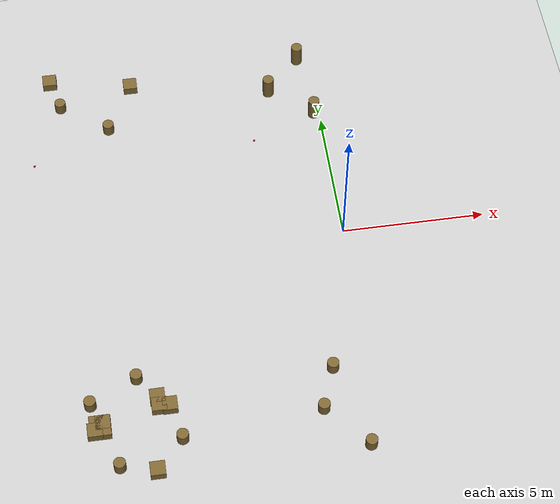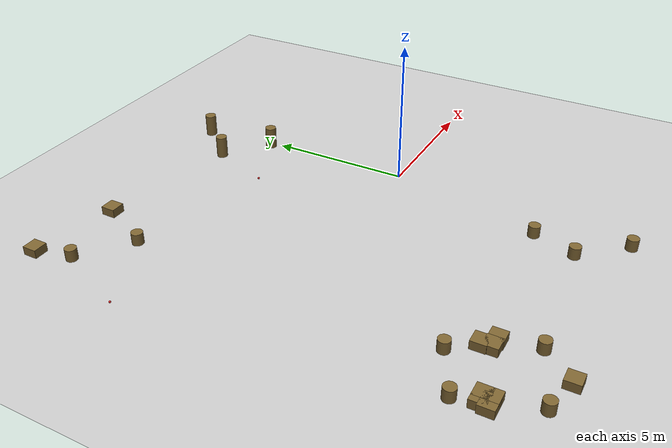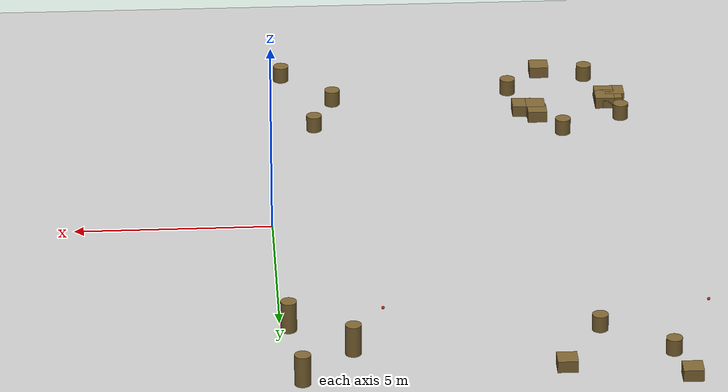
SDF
<sdf version="1.6">
 <world name="default">
  <model name="ground_plane">
   <static>1</static>
   <link name="link">
    <collision name="collision">
     <geometry><plane><normal>0 0 1</normal><size>100 100</size></plane></geometry>
     <surface><friction><ode><mu>100</mu><mu2>50</mu2></ode></friction></surface>
    </collision>
    <visual name="visual">
     <cast_shadows>0</cast_shadows>
     <geometry><plane><normal>0 0 1</normal><size>100 100</size></plane></geometry>
     <material>
      <script><uri>file://media/materials/scripts/gazebo.material</uri><name>Gazebo/Grey</name></script>
     </material>
    </visual>
   </link>
  </model>
  <model name="target_1">
   <link name="link">
    <pose>0 0 0.0375 0 -0 0</pose>
    <inertial>
     <mass>0.1467</mass>
     <inertia>
      <ixx>8.25187e-05</ixx>
      <ixy>0</ixy>
      <ixz>0</ixz>
      <iyy>8.25187e-05</iyy>
      <iyz>0</iyz>
      <izz>8.25187e-05</izz>
     </inertia>
    </inertial>
    <velocity_decay><linear>0</linear><angular>0.005</angular></velocity_decay>
    <visual name="visual">
     <geometry><sphere><radius>0.0375</radius></sphere></geometry>
     <material>
      <script><uri>file://media/materials/scripts/gazebo.material</uri><name>Gazebo/Red</name></script>
      <shader type="pixel"/>
     </material>
    </visual>
    <collision name="collision">
     <geometry><sphere><radius>0.0375</radius></sphere></geometry>
     <surface>
      <friction>
       <ode><mu>1</mu><mu2>1</mu2><fdir1>0 0 0</fdir1><slip1>0</slip1><slip2>0</slip2></ode>
       <torsional>
        <coefficient>1</coefficient>
        <patch_radius>0</patch_radius>
        <surface_radius>0.01</surface_radius>
        <use_patch_radius>0</use_patch_radius>
        <ode><slip>0</slip></ode>
       </torsional>
      </friction>
      <bounce><restitution_coefficient>0</restitution_coefficient><threshold>1e+06</threshold></bounce>
      <contact>
       <collide_without_contact>0</collide_without_contact>
       <collide_without_contact_bitmask>1</collide_without_contact_bitmask>
       <collide_bitmask>1</collide_bitmask>
       <ode>
        <soft_cfm>0</soft_cfm>
        <soft_erp>0.2</soft_erp>
        <kp>100000</kp>
        <kd>100</kd>
        <max_vel>100</max_vel>
        <min_depth>0.001</min_depth>
       </ode>
       <bullet>
        <split_impulse>1</split_impulse>
        <split_impulse_penetration_threshold>-0.01</split_impulse_penetration_threshold>
        <soft_cfm>0</soft_cfm>
        <soft_erp>0.2</soft_erp>
        <kp>100000</kp>
        <kd>100</kd>
       </bullet>
      </contact>
     </surface>
    </collision>
   </link>
   <static>0</static>
   <pose>-2.56757 4.41406 -0.001014 0 -0 0</pose>
  </model>
  <model name="target_2">
   <link name="link">
    <pose>0 0 0.0375 0 -0 0</pose>
    <inertial>
     <mass>0.1467</mass>
     <inertia>
      <ixx>8.25187e-05</ixx>
      <ixy>0</ixy>
      <ixz>0</ixz>
      <iyy>8.25187e-05</iyy>
      <iyz>0</iyz>
      <izz>8.25187e-05</izz>
     </inertia>
    </inertial>
    <velocity_decay><linear>0</linear><angular>0.005</angular></velocity_decay>
    <visual name="visual">
     <geometry><sphere><radius>0.0375</radius></sphere></geometry>
     <material>
      <script><uri>file://media/materials/scripts/gazebo.material</uri><name>Gazebo/Red</name></script>
      <shader type="pixel"/>
     </material>
    </visual>
    <collision name="collision">
     <geometry><sphere><radius>0.0375</radius></sphere></geometry>
     <surface>
      <friction>
       <ode><mu>1</mu><mu2>1</mu2><fdir1>0 0 0</fdir1><slip1>0</slip1><slip2>0</slip2></ode>
       <torsional>
        <coefficient>1</coefficient>
        <patch_radius>0</patch_radius>
        <surface_radius>0.01</surface_radius>
        <use_patch_radius>0</use_patch_radius>
        <ode><slip>0</slip></ode>
       </torsional>
      </friction>
      <bounce><restitution_coefficient>0</restitution_coefficient><threshold>1e+06</threshold></bounce>
      <contact>
       <collide_without_contact>0</collide_without_contact>
       <collide_without_contact_bitmask>1</collide_without_contact_bitmask>
       <collide_bitmask>1</collide_bitmask>
       <ode>
        <soft_cfm>0</soft_cfm>
        <soft_erp>0.2</soft_erp>
        <kp>100000</kp>
        <kd>100</kd>
        <max_vel>100</max_vel>
        <min_depth>0.001</min_depth>
       </ode>
       <bullet>
        <split_impulse>1</split_impulse>
        <split_impulse_penetration_threshold>-0.01</split_impulse_penetration_threshold>
        <soft_cfm>0</soft_cfm>
        <soft_erp>0.2</soft_erp>
        <kp>100000</kp>
        <kd>100</kd>
       </bullet>
      </contact>
     </surface>
    </collision>
   </link>
   <static>0</static>
   <pose>-10.6016 4.37211 -0.001014 0 -0 0</pose>
  </model>
  <model name="mini_box_clone_clone_2_clone_clone_0">
   <link name="link">
    <inertial>
     <mass>1</mass>
     <inertia>
      <ixx>0.166667</ixx>
      <ixy>0</ixy>
      <ixz>0</ixz>
      <iyy>0.166667</iyy>
      <iyz>0</iyz>
      <izz>0.166667</izz>
     </inertia>
    </inertial>
    <visual name="visual">
     <geometry><box><size>0.5 0.5 0.3</size></box></geometry>
     <material>
      <script><name>Gazebo/Grey</name><uri>file://media/materials/scripts/gazebo.material</uri></script>
      <shader type="vertex"><normal_map>__default__</normal_map></shader>
      <ambient>0.5 0.4 0.2 1</ambient>
      <diffuse>0.7 0.7 0.7 1</diffuse>
      <specular>0.01 0.01 0.01 1</specular>
      <emissive>0 0 0 1</emissive>
     </material>
    </visual>
    <collision name="collision">
     <geometry><box><size>0.5 0.5 0.3</size></box></geometry>
     <surface>
      <friction>
       <ode><mu>1</mu><mu2>1</mu2><fdir1>0 0 0</fdir1><slip1>0</slip1><slip2>0</slip2></ode>
       <torsional>
        <coefficient>1</coefficient>
        <patch_radius>0</patch_radius>
        <surface_radius>0</surface_radius>
        <use_patch_radius>1</use_patch_radius>
        <ode><slip>0</slip></ode>
       </torsional>
      </friction>
      <bounce><restitution_coefficient>0</restitution_coefficient><threshold>1e+06</threshold></bounce>
      <contact>
       <collide_without_contact>0</collide_without_contact>
       <collide_without_contact_bitmask>1</collide_without_contact_bitmask>
       <collide_bitmask>1</collide_bitmask>
       <ode>
        <soft_cfm>0</soft_cfm>
        <soft_erp>0.2</soft_erp>
        <kp>1e+13</kp>
        <kd>1</kd>
        <max_vel>0.01</max_vel>
        <min_depth>0</min_depth>
       </ode>
       <bullet>
        <split_impulse>1</split_impulse>
        <split_impulse_penetration_threshold>-0.01</split_impulse_penetration_threshold>
        <soft_cfm>0</soft_cfm>
        <soft_erp>0.2</soft_erp>
        <kp>1e+13</kp>
        <kd>1</kd>
       </bullet>
      </contact>
     </surface>
    </collision>
   </link>
   <static>1</static>
   <pose>-7.43924 -8.40475 0.15 0 -0 0</pose>
  </model>
  <model name="mini_box_clone_clone_2_clone_clone_0_clone">
   <link name="link">
    <inertial>
     <mass>1</mass>
     <inertia>
      <ixx>0.166667</ixx>
      <ixy>0</ixy>
      <ixz>0</ixz>
      <iyy>0.166667</iyy>
      <iyz>0</iyz>
      <izz>0.166667</izz>
     </inertia>
    </inertial>
    <visual name="visual">
     <geometry><box><size>0.5 0.5 0.3</size></box></geometry>
     <material>
      <script><name>Gazebo/Grey</name><uri>file://media/materials/scripts/gazebo.material</uri></script>
      <shader type="vertex"><normal_map>__default__</normal_map></shader>
      <ambient>0.5 0.4 0.2 1</ambient>
      <diffuse>0.7 0.7 0.7 1</diffuse>
      <specular>0.01 0.01 0.01 1</specular>
      <emissive>0 0 0 1</emissive>
     </material>
    </visual>
    <collision name="collision">
     <geometry><box><size>0.5 0.5 0.3</size></box></geometry>
     <surface>
      <friction>
       <ode><mu>1</mu><mu2>1</mu2><fdir1>0 0 0</fdir1><slip1>0</slip1><slip2>0</slip2></ode>
       <torsional>
        <coefficient>1</coefficient>
        <patch_radius>0</patch_radius>
        <surface_radius>0</surface_radius>
        <use_patch_radius>1</use_patch_radius>
        <ode><slip>0</slip></ode>
       </torsional>
      </friction>
      <bounce><restitution_coefficient>0</restitution_coefficient><threshold>1e+06</threshold></bounce>
      <contact>
       <collide_without_contact>0</collide_without_contact>
       <collide_without_contact_bitmask>1</collide_without_contact_bitmask>
       <collide_bitmask>1</collide_bitmask>
       <ode>
        <soft_cfm>0</soft_cfm>
        <soft_erp>0.2</soft_erp>
        <kp>1e+13</kp>
        <kd>1</kd>
        <max_vel>0.01</max_vel>
        <min_depth>0</min_depth>
       </ode>
       <bullet>
        <split_impulse>1</split_impulse>
        <split_impulse_penetration_threshold>-0.01</split_impulse_penetration_threshold>
        <soft_cfm>0</soft_cfm>
        <soft_erp>0.2</soft_erp>
        <kp>1e+13</kp>
        <kd>1</kd>
       </bullet>
      </contact>
     </surface>
    </collision>
   </link>
   <static>1</static>
   <pose>-6.80551 -6.12268 0.15 0 -0 0</pose>
  </model>
  <model name="mini_box_clone_clone_2_clone_clone_0_clone_0">
   <link name="link">
    <inertial>
     <mass>1</mass>
     <inertia>
      <ixx>0.166667</ixx>
      <ixy>0</ixy>
      <ixz>0</ixz>
      <iyy>0.166667</iyy>
      <iyz>0</iyz>
      <izz>0.166667</izz>
     </inertia>
    </inertial>
    <visual name="visual">
     <geometry><box><size>0.5 0.5 0.3</size></box></geometry>
     <material>
      <script><name>Gazebo/Grey</name><uri>file://media/materials/scripts/gazebo.material</uri></script>
      <shader type="vertex"><normal_map>__default__</normal_map></shader>
      <ambient>0.5 0.4 0.2 1</ambient>
      <diffuse>0.7 0.7 0.7 1</diffuse>
      <specular>0.01 0.01 0.01 1</specular>
      <emissive>0 0 0 1</emissive>
     </material>
    </visual>
    <collision name="collision">
     <geometry><box><size>0.5 0.5 0.3</size></box></geometry>
     <surface>
      <friction>
       <ode><mu>1</mu><mu2>1</mu2><fdir1>0 0 0</fdir1><slip1>0</slip1><slip2>0</slip2></ode>
       <torsional>
        <coefficient>1</coefficient>
        <patch_radius>0</patch_radius>
        <surface_radius>0</surface_radius>
        <use_patch_radius>1</use_patch_radius>
        <ode><slip>0</slip></ode>
       </torsional>
      </friction>
      <bounce><restitution_coefficient>0</restitution_coefficient><threshold>1e+06</threshold></bounce>
      <contact>
       <collide_without_contact>0</collide_without_contact>
       <collide_without_contact_bitmask>1</collide_without_contact_bitmask>
       <collide_bitmask>1</collide_bitmask>
       <ode>
        <soft_cfm>0</soft_cfm>
        <soft_erp>0.2</soft_erp>
        <kp>1e+13</kp>
        <kd>1</kd>
        <max_vel>0.01</max_vel>
        <min_depth>0</min_depth>
       </ode>
       <bullet>
        <split_impulse>1</split_impulse>
        <split_impulse_penetration_threshold>-0.01</split_impulse_penetration_threshold>
        <soft_cfm>0</soft_cfm>
        <soft_erp>0.2</soft_erp>
        <kp>1e+13</kp>
        <kd>1</kd>
       </bullet>
      </contact>
     </surface>
    </collision>
   </link>
   <static>1</static>
   <pose>-7.16035 -6.09735 0.15 0 -0 0</pose>
  </model>
  <model name="mini_box_clone_clone_2_clone_clone_0_clone_1">
   <link name="link">
    <inertial>
     <mass>1</mass>
     <inertia>
      <ixx>0.166667</ixx>
      <ixy>0</ixy>
      <ixz>0</ixz>
      <iyy>0.166667</iyy>
      <iyz>0</iyz>
      <izz>0.166667</izz>
     </inertia>
    </inertial>
    <visual name="visual">
     <geometry><box><size>0.5 0.5 0.3</size></box></geometry>
     <material>
      <script><name>Gazebo/Grey</name><uri>file://media/materials/scripts/gazebo.material</uri></script>
      <shader type="vertex"><normal_map>__default__</normal_map></shader>
      <ambient>0.5 0.4 0.2 1</ambient>
      <diffuse>0.7 0.7 0.7 1</diffuse>
      <specular>0.01 0.01 0.01 1</specular>
      <emissive>0 0 0 1</emissive>
     </material>
    </visual>
    <collision name="collision">
     <geometry><box><size>0.5 0.5 0.3</size></box></geometry>
     <surface>
      <friction>
       <ode><mu>1</mu><mu2>1</mu2><fdir1>0 0 0</fdir1><slip1>0</slip1><slip2>0</slip2></ode>
       <torsional>
        <coefficient>1</coefficient>
        <patch_radius>0</patch_radius>
        <surface_radius>0</surface_radius>
        <use_patch_radius>1</use_patch_radius>
        <ode><slip>0</slip></ode>
       </torsional>
      </friction>
      <bounce><restitution_coefficient>0</restitution_coefficient><threshold>1e+06</threshold></bounce>
      <contact>
       <collide_without_contact>0</collide_without_contact>
       <collide_without_contact_bitmask>1</collide_without_contact_bitmask>
       <collide_bitmask>1</collide_bitmask>
       <ode>
        <soft_cfm>0</soft_cfm>
        <soft_erp>0.2</soft_erp>
        <kp>1e+13</kp>
        <kd>1</kd>
        <max_vel>0.01</max_vel>
        <min_depth>0</min_depth>
       </ode>
       <bullet>
        <split_impulse>1</split_impulse>
        <split_impulse_penetration_threshold>-0.01</split_impulse_penetration_threshold>
        <soft_cfm>0</soft_cfm>
        <soft_erp>0.2</soft_erp>
        <kp>1e+13</kp>
        <kd>1</kd>
       </bullet>
      </contact>
     </surface>
    </collision>
   </link>
   <static>1</static>
   <pose>-7.18588 -5.76768 0.15 0 -0 0</pose>
  </model>
  <model name="mini_box_clone_clone_2_clone_clone_0_clone_2">
   <link name="link">
    <inertial>
     <mass>1</mass>
     <inertia>
      <ixx>0.166667</ixx>
      <ixy>0</ixy>
      <ixz>0</ixz>
      <iyy>0.166667</iyy>
      <iyz>0</iyz>
      <izz>0.166667</izz>
     </inertia>
    </inertial>
    <visual name="visual">
     <geometry><box><size>0.5 0.5 0.3</size></box></geometry>
     <material>
      <script><name>Gazebo/Grey</name><uri>file://media/materials/scripts/gazebo.material</uri></script>
      <shader type="vertex"><normal_map>__default__</normal_map></shader>
      <ambient>0.5 0.4 0.2 1</ambient>
      <diffuse>0.7 0.7 0.7 1</diffuse>
      <specular>0.01 0.01 0.01 1</specular>
      <emissive>0 0 0 1</emissive>
     </material>
    </visual>
    <collision name="collision">
     <geometry><box><size>0.5 0.5 0.3</size></box></geometry>
     <surface>
      <friction>
       <ode><mu>1</mu><mu2>1</mu2><fdir1>0 0 0</fdir1><slip1>0</slip1><slip2>0</slip2></ode>
       <torsional>
        <coefficient>1</coefficient>
        <patch_radius>0</patch_radius>
        <surface_radius>0</surface_radius>
        <use_patch_radius>1</use_patch_radius>
        <ode><slip>0</slip></ode>
       </torsional>
      </friction>
      <bounce><restitution_coefficient>0</restitution_coefficient><threshold>1e+06</threshold></bounce>
      <contact>
       <collide_without_contact>0</collide_without_contact>
       <collide_without_contact_bitmask>1</collide_without_contact_bitmask>
       <collide_bitmask>1</collide_bitmask>
       <ode>
        <soft_cfm>0</soft_cfm>
        <soft_erp>0.2</soft_erp>
        <kp>1e+13</kp>
        <kd>1</kd>
        <max_vel>0.01</max_vel>
        <min_depth>0</min_depth>
       </ode>
       <bullet>
        <split_impulse>1</split_impulse>
        <split_impulse_penetration_threshold>-0.01</split_impulse_penetration_threshold>
        <soft_cfm>0</soft_cfm>
        <soft_erp>0.2</soft_erp>
        <kp>1e+13</kp>
        <kd>1</kd>
       </bullet>
      </contact>
     </surface>
    </collision>
   </link>
   <static>1</static>
   <pose>-9.23906 -6.503 0.15 0 -0 0</pose>
  </model>
  <model name="mini_box_clone_clone_2_clone_clone_0_clone_3">
   <link name="link">
    <inertial>
     <mass>1</mass>
     <inertia>
      <ixx>0.166667</ixx>
      <ixy>0</ixy>
      <ixz>0</ixz>
      <iyy>0.166667</iyy>
      <iyz>0</iyz>
      <izz>0.166667</izz>
     </inertia>
    </inertial>
    <visual name="visual">
     <geometry><box><size>0.5 0.5 0.3</size></box></geometry>
     <material>
      <script><name>Gazebo/Grey</name><uri>file://media/materials/scripts/gazebo.material</uri></script>
      <shader type="vertex"><normal_map>__default__</normal_map></shader>
      <ambient>0.5 0.4 0.2 1</ambient>
      <diffuse>0.7 0.7 0.7 1</diffuse>
      <specular>0.01 0.01 0.01 1</specular>
      <emissive>0 0 0 1</emissive>
     </material>
    </visual>
    <collision name="collision">
     <geometry><box><size>0.5 0.5 0.3</size></box></geometry>
     <surface>
      <friction>
       <ode><mu>1</mu><mu2>1</mu2><fdir1>0 0 0</fdir1><slip1>0</slip1><slip2>0</slip2></ode>
       <torsional>
        <coefficient>1</coefficient>
        <patch_radius>0</patch_radius>
        <surface_radius>0</surface_radius>
        <use_patch_radius>1</use_patch_radius>
        <ode><slip>0</slip></ode>
       </torsional>
      </friction>
      <bounce><restitution_coefficient>0</restitution_coefficient><threshold>1e+06</threshold></bounce>
      <contact>
       <collide_without_contact>0</collide_without_contact>
       <collide_without_contact_bitmask>1</collide_without_contact_bitmask>
       <collide_bitmask>1</collide_bitmask>
       <ode>
        <soft_cfm>0</soft_cfm>
        <soft_erp>0.2</soft_erp>
        <kp>1e+13</kp>
        <kd>1</kd>
        <max_vel>0.01</max_vel>
        <min_depth>0</min_depth>
       </ode>
       <bullet>
        <split_impulse>1</split_impulse>
        <split_impulse_penetration_threshold>-0.01</split_impulse_penetration_threshold>
        <soft_cfm>0</soft_cfm>
        <soft_erp>0.2</soft_erp>
        <kp>1e+13</kp>
        <kd>1</kd>
       </bullet>
      </contact>
     </surface>
    </collision>
   </link>
   <static>1</static>
   <pose>-9.03619 -6.503 0.15 0 -0 0</pose>
  </model>
  <model name="mini_box_clone_clone_2_clone_clone_0_clone_4">
   <link name="link">
    <inertial>
     <mass>1</mass>
     <inertia>
      <ixx>0.166667</ixx>
      <ixy>0</ixy>
      <ixz>0</ixz>
      <iyy>0.166667</iyy>
      <iyz>0</iyz>
      <izz>0.166667</izz>
     </inertia>
    </inertial>
    <visual name="visual">
     <geometry><box><size>0.5 0.5 0.3</size></box></geometry>
     <material>
      <script><name>Gazebo/Grey</name><uri>file://media/materials/scripts/gazebo.material</uri></script>
      <shader type="vertex"><normal_map>__default__</normal_map></shader>
      <ambient>0.5 0.4 0.2 1</ambient>
      <diffuse>0.7 0.7 0.7 1</diffuse>
      <specular>0.01 0.01 0.01 1</specular>
      <emissive>0 0 0 1</emissive>
     </material>
    </visual>
    <collision name="collision">
     <geometry><box><size>0.5 0.5 0.3</size></box></geometry>
     <surface>
      <friction>
       <ode><mu>1</mu><mu2>1</mu2><fdir1>0 0 0</fdir1><slip1>0</slip1><slip2>0</slip2></ode>
       <torsional>
        <coefficient>1</coefficient>
        <patch_radius>0</patch_radius>
        <surface_radius>0</surface_radius>
        <use_patch_radius>1</use_patch_radius>
        <ode><slip>0</slip></ode>
       </torsional>
      </friction>
      <bounce><restitution_coefficient>0</restitution_coefficient><threshold>1e+06</threshold></bounce>
      <contact>
       <collide_without_contact>0</collide_without_contact>
       <collide_without_contact_bitmask>1</collide_without_contact_bitmask>
       <collide_bitmask>1</collide_bitmask>
       <ode>
        <soft_cfm>0</soft_cfm>
        <soft_erp>0.2</soft_erp>
        <kp>1e+13</kp>
        <kd>1</kd>
        <max_vel>0.01</max_vel>
        <min_depth>0</min_depth>
       </ode>
       <bullet>
        <split_impulse>1</split_impulse>
        <split_impulse_penetration_threshold>-0.01</split_impulse_penetration_threshold>
        <soft_cfm>0</soft_cfm>
        <soft_erp>0.2</soft_erp>
        <kp>1e+13</kp>
        <kd>1</kd>
       </bullet>
      </contact>
     </surface>
    </collision>
   </link>
   <static>1</static>
   <pose>-9.03619 -6.75657 0.15 0 -0 0</pose>
  </model>
  <model name="mini_box_clone_clone_2_clone_clone_0_clone_5">
   <link name="link">
    <inertial>
     <mass>1</mass>
     <inertia>
      <ixx>0.166667</ixx>
      <ixy>0</ixy>
      <ixz>0</ixz>
      <iyy>0.166667</iyy>
      <iyz>0</iyz>
      <izz>0.166667</izz>
     </inertia>
    </inertial>
    <visual name="visual">
     <geometry><box><size>0.5 0.5 0.3</size></box></geometry>
     <material>
      <script><name>Gazebo/Grey</name><uri>file://media/materials/scripts/gazebo.material</uri></script>
      <shader type="vertex"><normal_map>__default__</normal_map></shader>
      <ambient>0.5 0.4 0.2 1</ambient>
      <diffuse>0.7 0.7 0.7 1</diffuse>
      <specular>0.01 0.01 0.01 1</specular>
      <emissive>0 0 0 1</emissive>
     </material>
    </visual>
    <collision name="collision">
     <geometry><box><size>0.5 0.5 0.3</size></box></geometry>
     <surface>
      <friction>
       <ode><mu>1</mu><mu2>1</mu2><fdir1>0 0 0</fdir1><slip1>0</slip1><slip2>0</slip2></ode>
       <torsional>
        <coefficient>1</coefficient>
        <patch_radius>0</patch_radius>
        <surface_radius>0</surface_radius>
        <use_patch_radius>1</use_patch_radius>
        <ode><slip>0</slip></ode>
       </torsional>
      </friction>
      <bounce><restitution_coefficient>0</restitution_coefficient><threshold>1e+06</threshold></bounce>
      <contact>
       <collide_without_contact>0</collide_without_contact>
       <collide_without_contact_bitmask>1</collide_without_contact_bitmask>
       <collide_bitmask>1</collide_bitmask>
       <ode>
        <soft_cfm>0</soft_cfm>
        <soft_erp>0.2</soft_erp>
        <kp>1e+13</kp>
        <kd>1</kd>
        <max_vel>0.01</max_vel>
        <min_depth>0</min_depth>
       </ode>
       <bullet>
        <split_impulse>1</split_impulse>
        <split_impulse_penetration_threshold>-0.01</split_impulse_penetration_threshold>
        <soft_cfm>0</soft_cfm>
        <soft_erp>0.2</soft_erp>
        <kp>1e+13</kp>
        <kd>1</kd>
       </bullet>
      </contact>
     </surface>
    </collision>
   </link>
   <static>1</static>
   <pose>-9.31525 -6.75657 0.15 0 -0 0</pose>
  </model>
  <model name="mini_box_clone_clone_2_clone_clone_0_clone_6">
   <link name="link">
    <inertial>
     <mass>1</mass>
     <inertia>
      <ixx>0.166667</ixx>
      <ixy>0</ixy>
      <ixz>0</ixz>
      <iyy>0.166667</iyy>
      <iyz>0</iyz>
      <izz>0.166667</izz>
     </inertia>
    </inertial>
    <visual name="visual">
     <geometry><box><size>0.5 0.5 0.3</size></box></geometry>
     <material>
      <script><name>Gazebo/Grey</name><uri>file://media/materials/scripts/gazebo.material</uri></script>
      <shader type="vertex"><normal_map>__default__</normal_map></shader>
      <ambient>0.5 0.4 0.2 1</ambient>
      <diffuse>0.7 0.7 0.7 1</diffuse>
      <specular>0.01 0.01 0.01 1</specular>
      <emissive>0 0 0 1</emissive>
     </material>
    </visual>
    <collision name="collision">
     <geometry><box><size>0.5 0.5 0.3</size></box></geometry>
     <surface>
      <friction>
       <ode><mu>1</mu><mu2>1</mu2><fdir1>0 0 0</fdir1><slip1>0</slip1><slip2>0</slip2></ode>
       <torsional>
        <coefficient>1</coefficient>
        <patch_radius>0</patch_radius>
        <surface_radius>0</surface_radius>
        <use_patch_radius>1</use_patch_radius>
        <ode><slip>0</slip></ode>
       </torsional>
      </friction>
      <bounce><restitution_coefficient>0</restitution_coefficient><threshold>1e+06</threshold></bounce>
      <contact>
       <collide_without_contact>0</collide_without_contact>
       <collide_without_contact_bitmask>1</collide_without_contact_bitmask>
       <collide_bitmask>1</collide_bitmask>
       <ode>
        <soft_cfm>0</soft_cfm>
        <soft_erp>0.2</soft_erp>
        <kp>1e+13</kp>
        <kd>1</kd>
        <max_vel>0.01</max_vel>
        <min_depth>0</min_depth>
       </ode>
       <bullet>
        <split_impulse>1</split_impulse>
        <split_impulse_penetration_threshold>-0.01</split_impulse_penetration_threshold>
        <soft_cfm>0</soft_cfm>
        <soft_erp>0.2</soft_erp>
        <kp>1e+13</kp>
        <kd>1</kd>
       </bullet>
      </contact>
     </surface>
    </collision>
   </link>
   <static>1</static>
   <pose>-6.83027 7.54445 0.15 0 -0 0</pose>
  </model>
  <model name="mini_box_clone_clone_2_clone_clone_0_clone_7">
   <link name="link">
    <inertial>
     <mass>1</mass>
     <inertia>
      <ixx>0.166667</ixx>
      <ixy>0</ixy>
      <ixz>0</ixz>
      <iyy>0.166667</iyy>
      <iyz>0</iyz>
      <izz>0.166667</izz>
     </inertia>
    </inertial>
    <visual name="visual">
     <geometry><box><size>0.5 0.5 0.3</size></box></geometry>
     <material>
      <script><name>Gazebo/Grey</name><uri>file://media/materials/scripts/gazebo.material</uri></script>
      <shader type="vertex"><normal_map>__default__</normal_map></shader>
      <ambient>0.5 0.4 0.2 1</ambient>
      <diffuse>0.7 0.7 0.7 1</diffuse>
      <specular>0.01 0.01 0.01 1</specular>
      <emissive>0 0 0 1</emissive>
     </material>
    </visual>
    <collision name="collision">
     <geometry><box><size>0.5 0.5 0.3</size></box></geometry>
     <surface>
      <friction>
       <ode><mu>1</mu><mu2>1</mu2><fdir1>0 0 0</fdir1><slip1>0</slip1><slip2>0</slip2></ode>
       <torsional>
        <coefficient>1</coefficient>
        <patch_radius>0</patch_radius>
        <surface_radius>0</surface_radius>
        <use_patch_radius>1</use_patch_radius>
        <ode><slip>0</slip></ode>
       </torsional>
      </friction>
      <bounce><restitution_coefficient>0</restitution_coefficient><threshold>1e+06</threshold></bounce>
      <contact>
       <collide_without_contact>0</collide_without_contact>
       <collide_without_contact_bitmask>1</collide_without_contact_bitmask>
       <collide_bitmask>1</collide_bitmask>
       <ode>
        <soft_cfm>0</soft_cfm>
        <soft_erp>0.2</soft_erp>
        <kp>1e+13</kp>
        <kd>1</kd>
        <max_vel>0.01</max_vel>
        <min_depth>0</min_depth>
       </ode>
       <bullet>
        <split_impulse>1</split_impulse>
        <split_impulse_penetration_threshold>-0.01</split_impulse_penetration_threshold>
        <soft_cfm>0</soft_cfm>
        <soft_erp>0.2</soft_erp>
        <kp>1e+13</kp>
        <kd>1</kd>
       </bullet>
      </contact>
     </surface>
    </collision>
   </link>
   <static>1</static>
   <pose>-9.79692 8.12768 0.15 0 -0 0</pose>
  </model>
  <model name="dynamic_1_1">
   <link name="link">
    <inertial>
     <mass>1</mass>
     <inertia><ixx>0.145833</ixx><ixy>0</ixy><ixz>0</ixz><iyy>0.145833</iyy><iyz>0</iyz><izz>0.125</izz></inertia>
    </inertial>
    <visual name="visual">
     <geometry><cylinder><radius>0.2</radius><length>0.8</length></cylinder></geometry>
     <material>
      <script><name>Gazebo/Grey</name><uri>file://media/materials/scripts/gazebo.material</uri></script>
      <shader type="vertex"><normal_map>__default__</normal_map></shader>
      <ambient>0.5 0.4 0.2 1</ambient>
      <diffuse>0.7 0.7 0.7 1</diffuse>
      <specular>0.01 0.01 0.01 1</specular>
      <emissive>0 0 0 1</emissive>
     </material>
    </visual>
    <collision name="collision">
     <geometry><cylinder><radius>0.2</radius><length>0.8</length></cylinder></geometry>
     <surface>
      <friction>
       <ode><mu>1</mu><mu2>1</mu2><fdir1>0 0 0</fdir1><slip1>0</slip1><slip2>0</slip2></ode>
       <torsional>
        <coefficient>1</coefficient>
        <patch_radius>0</patch_radius>
        <surface_radius>0</surface_radius>
        <use_patch_radius>1</use_patch_radius>
        <ode><slip>0</slip></ode>
       </torsional>
      </friction>
      <bounce><restitution_coefficient>0</restitution_coefficient><threshold>1e+06</threshold></bounce>
      <contact>
       <collide_without_contact>0</collide_without_contact>
       <collide_without_contact_bitmask>1</collide_without_contact_bitmask>
       <collide_bitmask>1</collide_bitmask>
       <ode>
        <soft_cfm>0</soft_cfm>
        <soft_erp>0.2</soft_erp>
        <kp>1e+13</kp>
        <kd>1</kd>
        <max_vel>0.01</max_vel>
        <min_depth>0</min_depth>
       </ode>
       <bullet>
        <split_impulse>1</split_impulse>
        <split_impulse_penetration_threshold>-0.01</split_impulse_penetration_threshold>
        <soft_cfm>0</soft_cfm>
        <soft_erp>0.2</soft_erp>
        <kp>1e+13</kp>
        <kd>1</kd>
       </bullet>
      </contact>
     </surface>
    </collision>
   </link>
   <static>0</static>
   <pose>-0.455298 8.00454 0.399992 1e-06 2e-06 0</pose>
  </model>
  <model name="dynamic_1_3">
   <link name="link">
    <inertial>
     <mass>1</mass>
     <inertia><ixx>0.145833</ixx><ixy>0</ixy><ixz>0</ixz><iyy>0.145833</iyy><iyz>0</iyz><izz>0.125</izz></inertia>
    </inertial>
    <visual name="visual">
     <geometry><cylinder><radius>0.2</radius><length>0.8</length></cylinder></geometry>
     <material>
      <script><name>Gazebo/Grey</name><uri>file://media/materials/scripts/gazebo.material</uri></script>
      <shader type="vertex"><normal_map>__default__</normal_map></shader>
      <ambient>0.5 0.4 0.2 1</ambient>
      <diffuse>0.7 0.7 0.7 1</diffuse>
      <specular>0.01 0.01 0.01 1</specular>
      <emissive>0 0 0 1</emissive>
     </material>
    </visual>
    <collision name="collision">
     <geometry><cylinder><radius>0.2</radius><length>0.8</length></cylinder></geometry>
     <surface>
      <friction>
       <ode><mu>1</mu><mu2>1</mu2><fdir1>0 0 0</fdir1><slip1>0</slip1><slip2>0</slip2></ode>
       <torsional>
        <coefficient>1</coefficient>
        <patch_radius>0</patch_radius>
        <surface_radius>0</surface_radius>
        <use_patch_radius>1</use_patch_radius>
        <ode><slip>0</slip></ode>
       </torsional>
      </friction>
      <bounce><restitution_coefficient>0</restitution_coefficient><threshold>1e+06</threshold></bounce>
      <contact>
       <collide_without_contact>0</collide_without_contact>
       <collide_without_contact_bitmask>1</collide_without_contact_bitmask>
       <collide_bitmask>1</collide_bitmask>
       <ode>
        <soft_cfm>0</soft_cfm>
        <soft_erp>0.2</soft_erp>
        <kp>1e+13</kp>
        <kd>1</kd>
        <max_vel>0.01</max_vel>
        <min_depth>0</min_depth>
       </ode>
       <bullet>
        <split_impulse>1</split_impulse>
        <split_impulse_penetration_threshold>-0.01</split_impulse_penetration_threshold>
        <soft_cfm>0</soft_cfm>
        <soft_erp>0.2</soft_erp>
        <kp>1e+13</kp>
        <kd>1</kd>
       </bullet>
      </contact>
     </surface>
    </collision>
   </link>
   <static>0</static>
   <pose>-0.216608 5.3571 0.399999 -1e-06 -2e-06 0</pose>
  </model>
  <model name="dynamic_1_2">
   <link name="link">
    <inertial>
     <mass>1</mass>
     <inertia><ixx>0.145833</ixx><ixy>0</ixy><ixz>0</ixz><iyy>0.145833</iyy><iyz>0</iyz><izz>0.125</izz></inertia>
    </inertial>
    <visual name="visual">
     <geometry><cylinder><radius>0.2</radius><length>0.8</length></cylinder></geometry>
     <material>
      <script><name>Gazebo/Grey</name><uri>file://media/materials/scripts/gazebo.material</uri></script>
      <shader type="vertex"><normal_map>__default__</normal_map></shader>
      <ambient>0.5 0.4 0.2 1</ambient>
      <diffuse>0.7 0.7 0.7 1</diffuse>
      <specular>0.01 0.01 0.01 1</specular>
      <emissive>0 0 0 1</emissive>
     </material>
    </visual>
    <collision name="collision">
     <geometry><cylinder><radius>0.2</radius><length>0.8</length></cylinder></geometry>
     <surface>
      <friction>
       <ode><mu>1</mu><mu2>1</mu2><fdir1>0 0 0</fdir1><slip1>0</slip1><slip2>0</slip2></ode>
       <torsional>
        <coefficient>1</coefficient>
        <patch_radius>0</patch_radius>
        <surface_radius>0</surface_radius>
        <use_patch_radius>1</use_patch_radius>
        <ode><slip>0</slip></ode>
       </torsional>
      </friction>
      <bounce><restitution_coefficient>0</restitution_coefficient><threshold>1e+06</threshold></bounce>
      <contact>
       <collide_without_contact>0</collide_without_contact>
       <collide_without_contact_bitmask>1</collide_without_contact_bitmask>
       <collide_bitmask>1</collide_bitmask>
       <ode>
        <soft_cfm>0</soft_cfm>
        <soft_erp>0.2</soft_erp>
        <kp>1e+13</kp>
        <kd>1</kd>
        <max_vel>0.01</max_vel>
        <min_depth>0</min_depth>
       </ode>
       <bullet>
        <split_impulse>1</split_impulse>
        <split_impulse_penetration_threshold>-0.01</split_impulse_penetration_threshold>
        <soft_cfm>0</soft_cfm>
        <soft_erp>0.2</soft_erp>
        <kp>1e+13</kp>
        <kd>1</kd>
       </bullet>
      </contact>
     </surface>
    </collision>
   </link>
   <static>0</static>
   <pose>-1.73382 6.59616 0.399991 -1e-06 -0 -0</pose>
  </model>
  <model name="dynamic_2_2">
   <link name="link">
    <inertial>
     <mass>1</mass>
     <inertia><ixx>0.145833</ixx><ixy>0</ixy><ixz>0</ixz><iyy>0.145833</iyy><iyz>0</iyz><izz>0.125</izz></inertia>
    </inertial>
    <visual name="visual">
     <geometry><cylinder><radius>0.2</radius><length>0.8</length></cylinder></geometry>
     <material>
      <script><name>Gazebo/Grey</name><uri>file://media/materials/scripts/gazebo.material</uri></script>
      <shader type="vertex"><normal_map>__default__</normal_map></shader>
      <ambient>0.5 0.4 0.2 1</ambient>
      <diffuse>0.7 0.7 0.7 1</diffuse>
      <specular>0.01 0.01 0.01 1</specular>
      <emissive>0 0 0 1</emissive>
     </material>
    </visual>
    <collision name="collision">
     <geometry><cylinder><radius>0.2</radius><length>0.8</length></cylinder></geometry>
     <surface>
      <friction>
       <ode><mu>1</mu><mu2>1</mu2><fdir1>0 0 0</fdir1><slip1>0</slip1><slip2>0</slip2></ode>
       <torsional>
        <coefficient>1</coefficient>
        <patch_radius>0</patch_radius>
        <surface_radius>0</surface_radius>
        <use_patch_radius>1</use_patch_radius>
        <ode><slip>0</slip></ode>
       </torsional>
      </friction>
      <bounce><restitution_coefficient>0</restitution_coefficient><threshold>1e+06</threshold></bounce>
      <contact>
       <collide_without_contact>0</collide_without_contact>
       <collide_without_contact_bitmask>1</collide_without_contact_bitmask>
       <collide_bitmask>1</collide_bitmask>
       <ode>
        <soft_cfm>0</soft_cfm>
        <soft_erp>0.2</soft_erp>
        <kp>1e+13</kp>
        <kd>1</kd>
        <max_vel>0.01</max_vel>
        <min_depth>0</min_depth>
       </ode>
       <bullet>
        <split_impulse>1</split_impulse>
        <split_impulse_penetration_threshold>-0.01</split_impulse_penetration_threshold>
        <soft_cfm>0</soft_cfm>
        <soft_erp>0.2</soft_erp>
        <kp>1e+13</kp>
        <kd>1</kd>
       </bullet>
      </contact>
     </surface>
    </collision>
   </link>
   <static>0</static>
   <pose>-0.515068 -8.41442 0 0 -0 0</pose>
  </model>
  <model name="dynamic_2_3">
   <link name="link">
    <inertial>
     <mass>1</mass>
     <inertia><ixx>0.145833</ixx><ixy>0</ixy><ixz>0</ixz><iyy>0.145833</iyy><iyz>0</iyz><izz>0.125</izz></inertia>
    </inertial>
    <visual name="visual">
     <geometry><cylinder><radius>0.2</radius><length>0.8</length></cylinder></geometry>
     <material>
      <script><name>Gazebo/Grey</name><uri>file://media/materials/scripts/gazebo.material</uri></script>
      <shader type="vertex"><normal_map>__default__</normal_map></shader>
      <ambient>0.5 0.4 0.2 1</ambient>
      <diffuse>0.7 0.7 0.7 1</diffuse>
      <specular>0.01 0.01 0.01 1</specular>
      <emissive>0 0 0 1</emissive>
     </material>
    </visual>
    <collision name="collision">
     <geometry><cylinder><radius>0.2</radius><length>0.8</length></cylinder></geometry>
     <surface>
      <friction>
       <ode><mu>1</mu><mu2>1</mu2><fdir1>0 0 0</fdir1><slip1>0</slip1><slip2>0</slip2></ode>
       <torsional>
        <coefficient>1</coefficient>
        <patch_radius>0</patch_radius>
        <surface_radius>0</surface_radius>
        <use_patch_radius>1</use_patch_radius>
        <ode><slip>0</slip></ode>
       </torsional>
      </friction>
      <bounce><restitution_coefficient>0</restitution_coefficient><threshold>1e+06</threshold></bounce>
      <contact>
       <collide_without_contact>0</collide_without_contact>
       <collide_without_contact_bitmask>1</collide_without_contact_bitmask>
       <collide_bitmask>1</collide_bitmask>
       <ode>
        <soft_cfm>0</soft_cfm>
        <soft_erp>0.2</soft_erp>
        <kp>1e+13</kp>
        <kd>1</kd>
        <max_vel>0.01</max_vel>
        <min_depth>0</min_depth>
       </ode>
       <bullet>
        <split_impulse>1</split_impulse>
        <split_impulse_penetration_threshold>-0.01</split_impulse_penetration_threshold>
        <soft_cfm>0</soft_cfm>
        <soft_erp>0.2</soft_erp>
        <kp>1e+13</kp>
        <kd>1</kd>
       </bullet>
      </contact>
     </surface>
    </collision>
   </link>
   <static>0</static>
   <pose>-1.82289 -6.91424 0 0 -0 0</pose>
  </model>
  <model name="dynamic_2_4">
   <link name="link">
    <inertial>
     <mass>1</mass>
     <inertia><ixx>0.145833</ixx><ixy>0</ixy><ixz>0</ixz><iyy>0.145833</iyy><iyz>0</iyz><izz>0.125</izz></inertia>
    </inertial>
    <visual name="visual">
     <geometry><cylinder><radius>0.2</radius><length>0.8</length></cylinder></geometry>
     <material>
      <script><name>Gazebo/Grey</name><uri>file://media/materials/scripts/gazebo.material</uri></script>
      <shader type="vertex"><normal_map>__default__</normal_map></shader>
      <ambient>0.5 0.4 0.2 1</ambient>
      <diffuse>0.7 0.7 0.7 1</diffuse>
      <specular>0.01 0.01 0.01 1</specular>
      <emissive>0 0 0 1</emissive>
     </material>
    </visual>
    <collision name="collision">
     <geometry><cylinder><radius>0.2</radius><length>0.8</length></cylinder></geometry>
     <surface>
      <friction>
       <ode><mu>1</mu><mu2>1</mu2><fdir1>0 0 0</fdir1><slip1>0</slip1><slip2>0</slip2></ode>
       <torsional>
        <coefficient>1</coefficient>
        <patch_radius>0</patch_radius>
        <surface_radius>0</surface_radius>
        <use_patch_radius>1</use_patch_radius>
        <ode><slip>0</slip></ode>
       </torsional>
      </friction>
      <bounce><restitution_coefficient>0</restitution_coefficient><threshold>1e+06</threshold></bounce>
      <contact>
       <collide_without_contact>0</collide_without_contact>
       <collide_without_contact_bitmask>1</collide_without_contact_bitmask>
       <collide_bitmask>1</collide_bitmask>
       <ode>
        <soft_cfm>0</soft_cfm>
        <soft_erp>0.2</soft_erp>
        <kp>1e+13</kp>
        <kd>1</kd>
        <max_vel>0.01</max_vel>
        <min_depth>0</min_depth>
       </ode>
       <bullet>
        <split_impulse>1</split_impulse>
        <split_impulse_penetration_threshold>-0.01</split_impulse_penetration_threshold>
        <soft_cfm>0</soft_cfm>
        <soft_erp>0.2</soft_erp>
        <kp>1e+13</kp>
        <kd>1</kd>
       </bullet>
      </contact>
     </surface>
    </collision>
   </link>
   <static>0</static>
   <pose>-1.28304 -5.43507 0 0 -0 0</pose>
  </model>
  <model name="dynamic_3_0">
   <link name="link">
    <inertial>
     <mass>1</mass>
     <inertia><ixx>0.145833</ixx><ixy>0</ixy><ixz>0</ixz><iyy>0.145833</iyy><iyz>0</iyz><izz>0.125</izz></inertia>
    </inertial>
    <visual name="visual">
     <geometry><cylinder><radius>0.2</radius><length>0.8</length></cylinder></geometry>
     <material>
      <script><name>Gazebo/Grey</name><uri>file://media/materials/scripts/gazebo.material</uri></script>
      <shader type="vertex"><normal_map>__default__</normal_map></shader>
      <ambient>0.5 0.4 0.2 1</ambient>
      <diffuse>0.7 0.7 0.7 1</diffuse>
      <specular>0.01 0.01 0.01 1</specular>
      <emissive>0 0 0 1</emissive>
     </material>
    </visual>
    <collision name="collision">
     <geometry><cylinder><radius>0.2</radius><length>0.8</length></cylinder></geometry>
     <surface>
      <friction>
       <ode><mu>1</mu><mu2>1</mu2><fdir1>0 0 0</fdir1><slip1>0</slip1><slip2>0</slip2></ode>
       <torsional>
        <coefficient>1</coefficient>
        <patch_radius>0</patch_radius>
        <surface_radius>0</surface_radius>
        <use_patch_radius>1</use_patch_radius>
        <ode><slip>0</slip></ode>
       </torsional>
      </friction>
      <bounce><restitution_coefficient>0</restitution_coefficient><threshold>1e+06</threshold></bounce>
      <contact>
       <collide_without_contact>0</collide_without_contact>
       <collide_without_contact_bitmask>1</collide_without_contact_bitmask>
       <collide_bitmask>1</collide_bitmask>
       <ode>
        <soft_cfm>0</soft_cfm>
        <soft_erp>0.2</soft_erp>
        <kp>1e+13</kp>
        <kd>1</kd>
        <max_vel>0.01</max_vel>
        <min_depth>0</min_depth>
       </ode>
       <bullet>
        <split_impulse>1</split_impulse>
        <split_impulse_penetration_threshold>-0.01</split_impulse_penetration_threshold>
        <soft_cfm>0</soft_cfm>
        <soft_erp>0.2</soft_erp>
        <kp>1e+13</kp>
        <kd>1</kd>
       </bullet>
      </contact>
     </surface>
    </collision>
   </link>
   <static>0</static>
   <pose>-7.79887 5.65885 0 0 -0 0</pose>
  </model>
  <model name="dynamic_3_1">
   <link name="link">
    <inertial>
     <mass>1</mass>
     <inertia><ixx>0.145833</ixx><ixy>0</ixy><ixz>0</ixz><iyy>0.145833</iyy><iyz>0</iyz><izz>0.125</izz></inertia>
    </inertial>
    <visual name="visual">
     <geometry><cylinder><radius>0.2</radius><length>0.8</length></cylinder></geometry>
     <material>
      <script><name>Gazebo/Grey</name><uri>file://media/materials/scripts/gazebo.material</uri></script>
      <shader type="vertex"><normal_map>__default__</normal_map></shader>
      <ambient>0.5 0.4 0.2 1</ambient>
      <diffuse>0.7 0.7 0.7 1</diffuse>
      <specular>0.01 0.01 0.01 1</specular>
      <emissive>0 0 0 1</emissive>
     </material>
    </visual>
    <collision name="collision">
     <geometry><cylinder><radius>0.2</radius><length>0.8</length></cylinder></geometry>
     <surface>
      <friction>
       <ode><mu>1</mu><mu2>1</mu2><fdir1>0 0 0</fdir1><slip1>0</slip1><slip2>0</slip2></ode>
       <torsional>
        <coefficient>1</coefficient>
        <patch_radius>0</patch_radius>
        <surface_radius>0</surface_radius>
        <use_patch_radius>1</use_patch_radius>
        <ode><slip>0</slip></ode>
       </torsional>
      </friction>
      <bounce><restitution_coefficient>0</restitution_coefficient><threshold>1e+06</threshold></bounce>
      <contact>
       <collide_without_contact>0</collide_without_contact>
       <collide_without_contact_bitmask>1</collide_without_contact_bitmask>
       <collide_bitmask>1</collide_bitmask>
       <ode>
        <soft_cfm>0</soft_cfm>
        <soft_erp>0.2</soft_erp>
        <kp>1e+13</kp>
        <kd>1</kd>
        <max_vel>0.01</max_vel>
        <min_depth>0</min_depth>
       </ode>
       <bullet>
        <split_impulse>1</split_impulse>
        <split_impulse_penetration_threshold>-0.01</split_impulse_penetration_threshold>
        <soft_cfm>0</soft_cfm>
        <soft_erp>0.2</soft_erp>
        <kp>1e+13</kp>
        <kd>1</kd>
       </bullet>
      </contact>
     </surface>
    </collision>
   </link>
   <static>0</static>
   <pose>-9.47776 6.91103 0 0 -0 0</pose>
  </model>
  <model name="dynamic_4_0">
   <link name="link">
    <inertial>
     <mass>1</mass>
     <inertia><ixx>0.145833</ixx><ixy>0</ixy><ixz>0</ixz><iyy>0.145833</iyy><iyz>0</iyz><izz>0.125</izz></inertia>
    </inertial>
    <visual name="visual">
     <geometry><cylinder><radius>0.2</radius><length>0.8</length></cylinder></geometry>
     <material>
      <script><name>Gazebo/Grey</name><uri>file://media/materials/scripts/gazebo.material</uri></script>
      <shader type="vertex"><normal_map>__default__</normal_map></shader>
      <ambient>0.5 0.4 0.2 1</ambient>
      <diffuse>0.7 0.7 0.7 1</diffuse>
      <specular>0.01 0.01 0.01 1</specular>
      <emissive>0 0 0 1</emissive>
     </material>
    </visual>
    <collision name="collision">
     <geometry><cylinder><radius>0.2</radius><length>0.8</length></cylinder></geometry>
     <surface>
      <friction>
       <ode><mu>1</mu><mu2>1</mu2><fdir1>0 0 0</fdir1><slip1>0</slip1><slip2>0</slip2></ode>
       <torsional>
        <coefficient>1</coefficient>
        <patch_radius>0</patch_radius>
        <surface_radius>0</surface_radius>
        <use_patch_radius>1</use_patch_radius>
        <ode><slip>0</slip></ode>
       </torsional>
      </friction>
      <bounce><restitution_coefficient>0</restitution_coefficient><threshold>1e+06</threshold></bounce>
      <contact>
       <collide_without_contact>0</collide_without_contact>
       <collide_without_contact_bitmask>1</collide_without_contact_bitmask>
       <collide_bitmask>1</collide_bitmask>
       <ode>
        <soft_cfm>0</soft_cfm>
        <soft_erp>0.2</soft_erp>
        <kp>1e+13</kp>
        <kd>1</kd>
        <max_vel>0.01</max_vel>
        <min_depth>0</min_depth>
       </ode>
       <bullet>
        <split_impulse>1</split_impulse>
        <split_impulse_penetration_threshold>-0.01</split_impulse_penetration_threshold>
        <soft_cfm>0</soft_cfm>
        <soft_erp>0.2</soft_erp>
        <kp>1e+13</kp>
        <kd>1</kd>
       </bullet>
      </contact>
     </surface>
    </collision>
   </link>
   <static>0</static>
   <pose>-6.51889 -7.35017 0 0 -0 0</pose>
  </model>
  <model name="dynamic_4_1">
   <link name="link">
    <inertial>
     <mass>1</mass>
     <inertia><ixx>0.145833</ixx><ixy>0</ixy><ixz>0</ixz><iyy>0.145833</iyy><iyz>0</iyz><izz>0.125</izz></inertia>
    </inertial>
    <visual name="visual">
     <geometry><cylinder><radius>0.2</radius><length>0.8</length></cylinder></geometry>
     <material>
      <script><name>Gazebo/Grey</name><uri>file://media/materials/scripts/gazebo.material</uri></script>
      <shader type="vertex"><normal_map>__default__</normal_map></shader>
      <ambient>0.5 0.4 0.2 1</ambient>
      <diffuse>0.7 0.7 0.7 1</diffuse>
      <specular>0.01 0.01 0.01 1</specular>
      <emissive>0 0 0 1</emissive>
     </material>
    </visual>
    <collision name="collision">
     <geometry><cylinder><radius>0.2</radius><length>0.8</length></cylinder></geometry>
     <surface>
      <friction>
       <ode><mu>1</mu><mu2>1</mu2><fdir1>0 0 0</fdir1><slip1>0</slip1><slip2>0</slip2></ode>
       <torsional>
        <coefficient>1</coefficient>
        <patch_radius>0</patch_radius>
        <surface_radius>0</surface_radius>
        <use_patch_radius>1</use_patch_radius>
        <ode><slip>0</slip></ode>
       </torsional>
      </friction>
      <bounce><restitution_coefficient>0</restitution_coefficient><threshold>1e+06</threshold></bounce>
      <contact>
       <collide_without_contact>0</collide_without_contact>
       <collide_without_contact_bitmask>1</collide_without_contact_bitmask>
       <collide_bitmask>1</collide_bitmask>
       <ode>
        <soft_cfm>0</soft_cfm>
        <soft_erp>0.2</soft_erp>
        <kp>1e+13</kp>
        <kd>1</kd>
        <max_vel>0.01</max_vel>
        <min_depth>0</min_depth>
       </ode>
       <bullet>
        <split_impulse>1</split_impulse>
        <split_impulse_penetration_threshold>-0.01</split_impulse_penetration_threshold>
        <soft_cfm>0</soft_cfm>
        <soft_erp>0.2</soft_erp>
        <kp>1e+13</kp>
        <kd>1</kd>
       </bullet>
      </contact>
     </surface>
    </collision>
   </link>
   <static>0</static>
   <pose>-8.62459 -8.09619 0 0 -0 0</pose>
  </model>
  <model name="dynamic_4_2">
   <link name="link">
    <inertial>
     <mass>1</mass>
     <inertia><ixx>0.145833</ixx><ixy>0</ixy><ixz>0</ixz><iyy>0.145833</iyy><iyz>0</iyz><izz>0.125</izz></inertia>
    </inertial>
    <visual name="visual">
     <geometry><cylinder><radius>0.2</radius><length>0.8</length></cylinder></geometry>
     <material>
      <script><name>Gazebo/Grey</name><uri>file://media/materials/scripts/gazebo.material</uri></script>
      <shader type="vertex"><normal_map>__default__</normal_map></shader>
      <ambient>0.5 0.4 0.2 1</ambient>
      <diffuse>0.7 0.7 0.7 1</diffuse>
      <specular>0.01 0.01 0.01 1</specular>
      <emissive>0 0 0 1</emissive>
     </material>
    </visual>
    <collision name="collision">
     <geometry><cylinder><radius>0.2</radius><length>0.8</length></cylinder></geometry>
     <surface>
      <friction>
       <ode><mu>1</mu><mu2>1</mu2><fdir1>0 0 0</fdir1><slip1>0</slip1><slip2>0</slip2></ode>
       <torsional>
        <coefficient>1</coefficient>
        <patch_radius>0</patch_radius>
        <surface_radius>0</surface_radius>
        <use_patch_radius>1</use_patch_radius>
        <ode><slip>0</slip></ode>
       </torsional>
      </friction>
      <bounce><restitution_coefficient>0</restitution_coefficient><threshold>1e+06</threshold></bounce>
      <contact>
       <collide_without_contact>0</collide_without_contact>
       <collide_without_contact_bitmask>1</collide_without_contact_bitmask>
       <collide_bitmask>1</collide_bitmask>
       <ode>
        <soft_cfm>0</soft_cfm>
        <soft_erp>0.2</soft_erp>
        <kp>1e+13</kp>
        <kd>1</kd>
        <max_vel>0.01</max_vel>
        <min_depth>0</min_depth>
       </ode>
       <bullet>
        <split_impulse>1</split_impulse>
        <split_impulse_penetration_threshold>-0.01</split_impulse_penetration_threshold>
        <soft_cfm>0</soft_cfm>
        <soft_erp>0.2</soft_erp>
        <kp>1e+13</kp>
        <kd>1</kd>
       </bullet>
      </contact>
     </surface>
    </collision>
   </link>
   <static>0</static>
   <pose>-9.39291 -5.73861 0 0 -0 0</pose>
  </model>
  <model name="dynamic_4_3">
   <link name="link">
    <inertial>
     <mass>1</mass>
     <inertia><ixx>0.145833</ixx><ixy>0</ixy><ixz>0</ixz><iyy>0.145833</iyy><iyz>0</iyz><izz>0.125</izz></inertia>
    </inertial>
    <visual name="visual">
     <geometry><cylinder><radius>0.2</radius><length>0.8</length></cylinder></geometry>
     <material>
      <script><name>Gazebo/Grey</name><uri>file://media/materials/scripts/gazebo.material</uri></script>
      <shader type="vertex"><normal_map>__default__</normal_map></shader>
      <ambient>0.5 0.4 0.2 1</ambient>
      <diffuse>0.7 0.7 0.7 1</diffuse>
      <specular>0.01 0.01 0.01 1</specular>
      <emissive>0 0 0 1</emissive>
     </material>
    </visual>
    <collision name="collision">
     <geometry><cylinder><radius>0.2</radius><length>0.8</length></cylinder></geometry>
     <surface>
      <friction>
       <ode><mu>1</mu><mu2>1</mu2><fdir1>0 0 0</fdir1><slip1>0</slip1><slip2>0</slip2></ode>
       <torsional>
        <coefficient>1</coefficient>
        <patch_radius>0</patch_radius>
        <surface_radius>0</surface_radius>
        <use_patch_radius>1</use_patch_radius>
        <ode><slip>0</slip></ode>
       </torsional>
      </friction>
      <bounce><restitution_coefficient>0</restitution_coefficient><threshold>1e+06</threshold></bounce>
      <contact>
       <collide_without_contact>0</collide_without_contact>
       <collide_without_contact_bitmask>1</collide_without_contact_bitmask>
       <collide_bitmask>1</collide_bitmask>
       <ode>
        <soft_cfm>0</soft_cfm>
        <soft_erp>0.2</soft_erp>
        <kp>1e+13</kp>
        <kd>1</kd>
        <max_vel>0.01</max_vel>
        <min_depth>0</min_depth>
       </ode>
       <bullet>
        <split_impulse>1</split_impulse>
        <split_impulse_penetration_threshold>-0.01</split_impulse_penetration_threshold>
        <soft_cfm>0</soft_cfm>
        <soft_erp>0.2</soft_erp>
        <kp>1e+13</kp>
        <kd>1</kd>
       </bullet>
      </contact>
     </surface>
    </collision>
   </link>
   <static>0</static>
   <pose>-7.80046 -4.94405 0 0 -0 0</pose>
  </model>
 </world>
</sdf>
